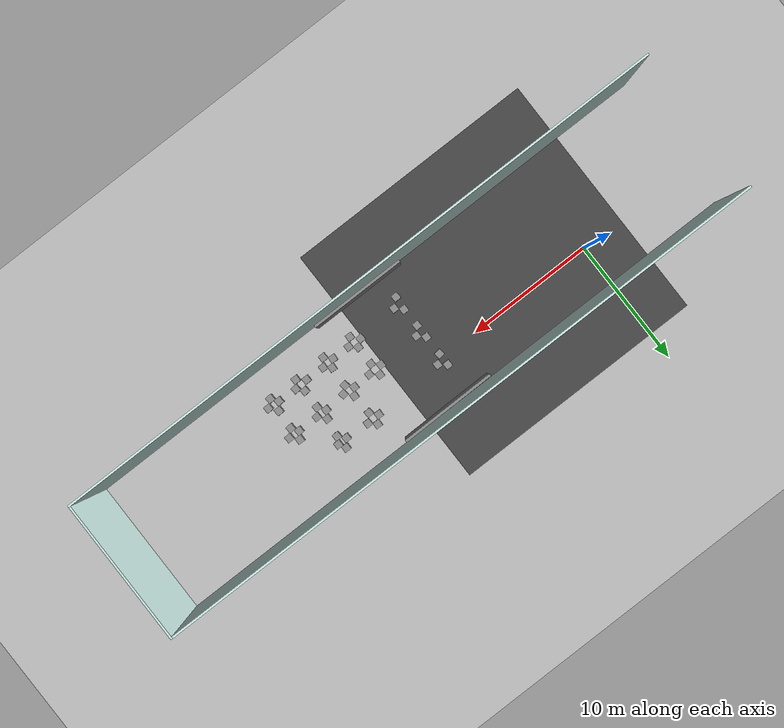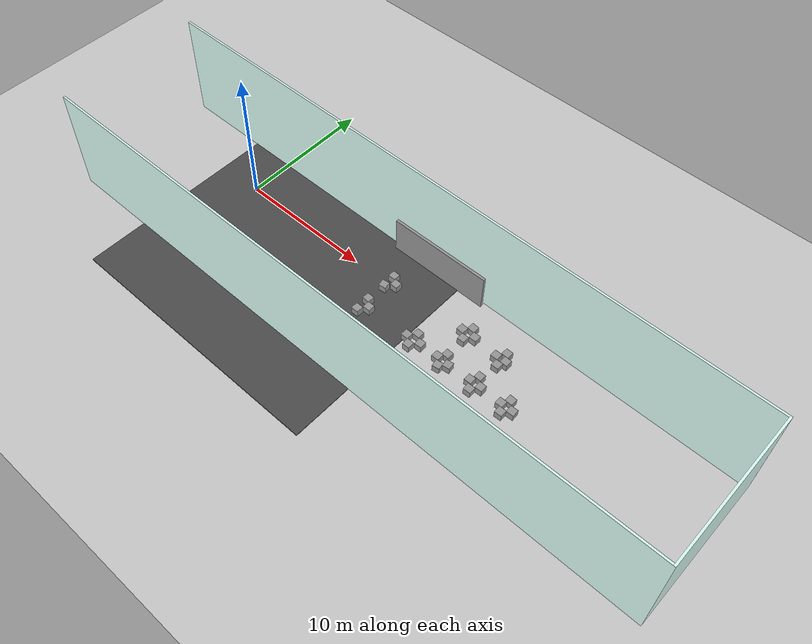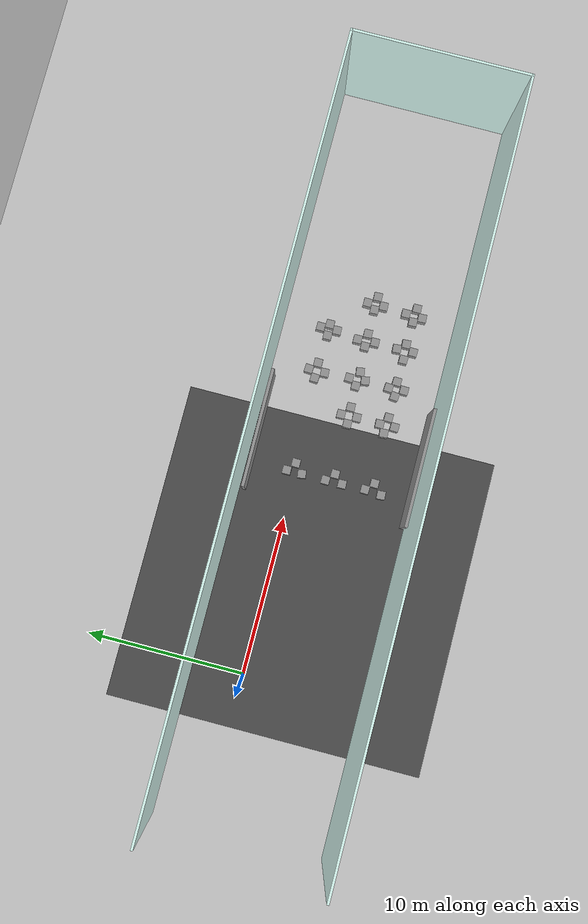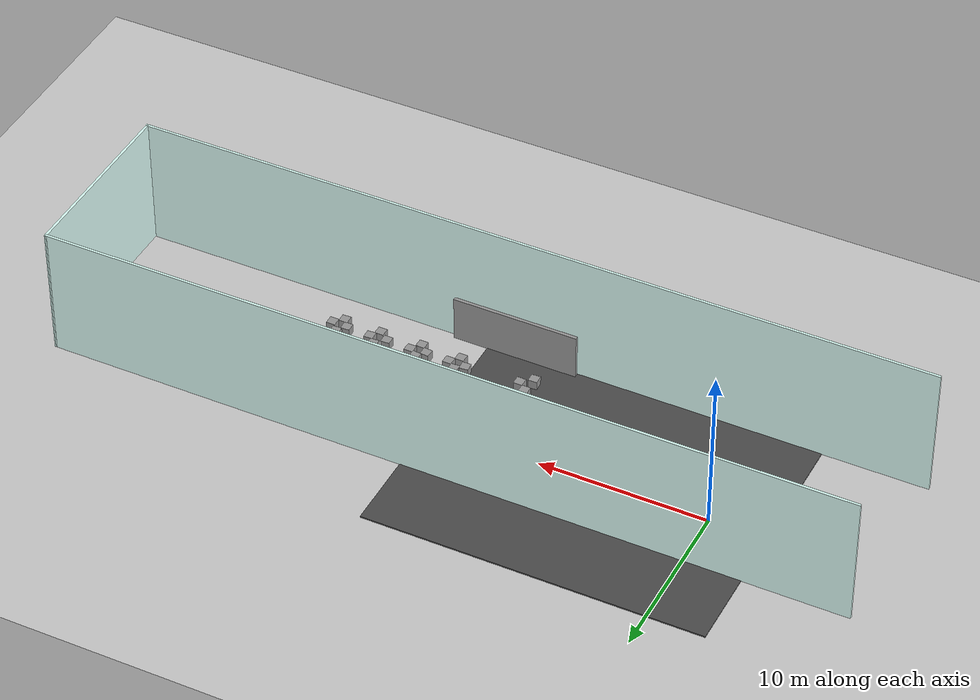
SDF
<sdf version="1.6">
 <world name="default">
  <model name="ground_plane">
   <static>1</static>
   <link name="link">
    <collision name="collision">
     <geometry><plane><normal>0 0 1</normal><size>100 100</size></plane></geometry>
     <surface>
      <contact><collide_bitmask>65535</collide_bitmask></contact>
      <friction><ode><mu>100</mu><mu2>50</mu2></ode></friction>
     </surface>
    </collision>
    <visual name="visual">
     <cast_shadows>0</cast_shadows>
     <geometry><plane><normal>0 0 1</normal><size>100 100</size></plane></geometry>
     <material>
      <script><uri>file://media/materials/scripts/gazebo.material</uri><name>Gazebo/Grey</name></script>
     </material>
    </visual>
   </link>
  </model>
  <model name="grey_wall">
   <static>1</static>
   <link name="link">
    <pose>0 0 1.4 0 -0 0</pose>
    <collision name="collision"><geometry><box><size>7.5 0.2 2.8</size></box></geometry></collision>
    <visual name="visual">
     <cast_shadows>0</cast_shadows>
     <geometry><box><size>7.5 0.2 2.8</size></box></geometry>
     <material>
      <script>
       <uri>model://grey_wall/materials/scripts</uri>
       <uri>model://grey_wall/materials/textures</uri>
       <name>vrc/grey_wall</name>
      </script>
     </material>
    </visual>
   </link>
   <pose>14.888 2.91481 0 0 -0 0.005635</pose>
  </model>
  <model name="grey_wall_clone">
   <static>1</static>
   <link name="link">
    <pose>0 0 1.4 0 -0 0</pose>
    <collision name="collision"><geometry><box><size>7.5 0.2 2.8</size></box></geometry></collision>
    <visual name="visual">
     <cast_shadows>0</cast_shadows>
     <geometry><box><size>7.5 0.2 2.8</size></box></geometry>
     <material>
      <script>
       <uri>model://grey_wall/materials/scripts</uri>
       <uri>model://grey_wall/materials/textures</uri>
       <name>vrc/grey_wall</name>
      </script>
     </material>
    </visual>
   </link>
   <pose>14.9849 -7.30049 0 0 -0 0</pose>
  </model>
  <model name="unit_box_0_clone_10">
   <pose>17.839 -4.8153 0.31411 -1e-06 9e-06 -0.045278</pose>
   <link name="link">
    <inertial>
     <mass>1</mass>
     <inertia>
      <ixx>0.166667</ixx>
      <ixy>0</ixy>
      <ixz>0</ixz>
      <iyy>0.166667</iyy>
      <iyz>0</iyz>
      <izz>0.166667</izz>
     </inertia>
    </inertial>
    <collision name="collision">
     <geometry><box><size>0.530101 0.530101 0.530101</size></box></geometry>
    </collision>
    <visual name="visual">
     <geometry><box><size>0.530101 0.530101 0.530101</size></box></geometry>
     <material>
      <script><name>Gazebo/Grey</name><uri>file://media/materials/scripts/gazebo.material</uri></script>
     </material>
    </visual>
   </link>
  </model>
  <model name="unit_box_0_clone_11">
   <pose>16.7922 -4.75542 0.314111 -5e-06 1.1e-05 0.068782</pose>
   <link name="link">
    <inertial>
     <mass>1</mass>
     <inertia>
      <ixx>0.166667</ixx>
      <ixy>0</ixy>
      <ixz>0</ixz>
      <iyy>0.166667</iyy>
      <iyz>0</iyz>
      <izz>0.166667</izz>
     </inertia>
    </inertial>
    <collision name="collision">
     <geometry><box><size>0.530101 0.530101 0.530101</size></box></geometry>
    </collision>
    <visual name="visual">
     <geometry><box><size>0.530101 0.530101 0.530101</size></box></geometry>
     <material>
      <script><name>Gazebo/Grey</name><uri>file://media/materials/scripts/gazebo.material</uri></script>
     </material>
    </visual>
   </link>
  </model>
  <model name="unit_box_0_clone_12">
   <pose>17.3054 -4.36211 0.314113 2e-06 -0 0.040981</pose>
   <link name="link">
    <inertial>
     <mass>1</mass>
     <inertia>
      <ixx>0.166667</ixx>
      <ixy>0</ixy>
      <ixz>0</ixz>
      <iyy>0.166667</iyy>
      <iyz>0</iyz>
      <izz>0.166667</izz>
     </inertia>
    </inertial>
    <collision name="collision">
     <geometry><box><size>0.530101 0.530101 0.530101</size></box></geometry>
    </collision>
    <visual name="visual">
     <geometry><box><size>0.530101 0.530101 0.530101</size></box></geometry>
     <material>
      <script><name>Gazebo/Grey</name><uri>file://media/materials/scripts/gazebo.material</uri></script>
     </material>
    </visual>
   </link>
  </model>
  <model name="unit_box_0_clone_13">
   <pose>17.3287 -5.32938 0.314108 -7e-06 1.1e-05 -0.026628</pose>
   <link name="link">
    <inertial>
     <mass>1</mass>
     <inertia>
      <ixx>0.166667</ixx>
      <ixy>0</ixy>
      <ixz>0</ixz>
      <iyy>0.166667</iyy>
      <iyz>0</iyz>
      <izz>0.166667</izz>
     </inertia>
    </inertial>
    <collision name="collision">
     <geometry><box><size>0.530101 0.530101 0.530101</size></box></geometry>
    </collision>
    <visual name="visual">
     <geometry><box><size>0.530101 0.530101 0.530101</size></box></geometry>
     <material>
      <script><name>Gazebo/Grey</name><uri>file://media/materials/scripts/gazebo.material</uri></script>
     </material>
    </visual>
   </link>
  </model>
  <model name="unit_box_0_clone_18">
   <pose>19.1218 0.36381 0.31411 -1e-06 9e-06 -0.050958</pose>
   <link name="link">
    <inertial>
     <mass>1</mass>
     <inertia>
      <ixx>0.166667</ixx>
      <ixy>0</ixy>
      <ixz>0</ixz>
      <iyy>0.166667</iyy>
      <iyz>0</iyz>
      <izz>0.166667</izz>
     </inertia>
    </inertial>
    <collision name="collision">
     <geometry><box><size>0.530101 0.530101 0.530101</size></box></geometry>
    </collision>
    <visual name="visual">
     <geometry><box><size>0.530101 0.530101 0.530101</size></box></geometry>
     <material>
      <script><name>Gazebo/Grey</name><uri>file://media/materials/scripts/gazebo.material</uri></script>
     </material>
    </visual>
   </link>
  </model>
  <model name="unit_box_0_clone_19">
   <pose>19.61 0.86882 0.314113 0 0 -0.055591</pose>
   <link name="link">
    <inertial>
     <mass>1</mass>
     <inertia>
      <ixx>0.166667</ixx>
      <ixy>0</ixy>
      <ixz>0</ixz>
      <iyy>0.166667</iyy>
      <iyz>0</iyz>
      <izz>0.166667</izz>
     </inertia>
    </inertial>
    <collision name="collision">
     <geometry><box><size>0.530101 0.530101 0.530101</size></box></geometry>
    </collision>
    <visual name="visual">
     <geometry><box><size>0.530101 0.530101 0.530101</size></box></geometry>
     <material>
      <script><name>Gazebo/Grey</name><uri>file://media/materials/scripts/gazebo.material</uri></script>
     </material>
    </visual>
   </link>
  </model>
  <model name="unit_box_0_clone_20">
   <pose>20.1335 0.394582 0.314113 2e-06 -0 -0.00175</pose>
   <link name="link">
    <inertial>
     <mass>1</mass>
     <inertia>
      <ixx>0.166667</ixx>
      <ixy>0</ixy>
      <ixz>0</ixz>
      <iyy>0.166667</iyy>
      <iyz>0</iyz>
      <izz>0.166667</izz>
     </inertia>
    </inertial>
    <collision name="collision">
     <geometry><box><size>0.530101 0.530101 0.530101</size></box></geometry>
    </collision>
    <visual name="visual">
     <geometry><box><size>0.530101 0.530101 0.530101</size></box></geometry>
     <material>
      <script><name>Gazebo/Grey</name><uri>file://media/materials/scripts/gazebo.material</uri></script>
     </material>
    </visual>
   </link>
  </model>
  <model name="unit_box_0_clone_22">
   <pose>19.6936 -1.76087 0.31411 -1e-06 9e-06 -0.043758</pose>
   <link name="link">
    <inertial>
     <mass>1</mass>
     <inertia>
      <ixx>0.166667</ixx>
      <ixy>0</ixy>
      <ixz>0</ixz>
      <iyy>0.166667</iyy>
      <iyz>0</iyz>
      <izz>0.166667</izz>
     </inertia>
    </inertial>
    <collision name="collision">
     <geometry><box><size>0.530101 0.530101 0.530101</size></box></geometry>
    </collision>
    <visual name="visual">
     <geometry><box><size>0.530101 0.530101 0.530101</size></box></geometry>
     <material>
      <script><name>Gazebo/Grey</name><uri>file://media/materials/scripts/gazebo.material</uri></script>
     </material>
    </visual>
   </link>
  </model>
  <model name="unit_box_0_clone_24">
   <pose>20.2313 -2.35129 0.314108 -1.1e-05 -7e-06 0.142029</pose>
   <link name="link">
    <inertial>
     <mass>1</mass>
     <inertia>
      <ixx>0.166667</ixx>
      <ixy>0</ixy>
      <ixz>0</ixz>
      <iyy>0.166667</iyy>
      <iyz>0</iyz>
      <izz>0.166667</izz>
     </inertia>
    </inertial>
    <collision name="collision">
     <geometry><box><size>0.530101 0.530101 0.530101</size></box></geometry>
    </collision>
    <visual name="visual">
     <geometry><box><size>0.530101 0.530101 0.530101</size></box></geometry>
     <material>
      <script><name>Gazebo/Grey</name><uri>file://media/materials/scripts/gazebo.material</uri></script>
     </material>
    </visual>
   </link>
  </model>
  <model name="unit_box_0_clone_26">
   <pose>19.6965 -4.34867 0.314112 3e-06 3e-06 -0.080151</pose>
   <link name="link">
    <inertial>
     <mass>1</mass>
     <inertia>
      <ixx>0.166667</ixx>
      <ixy>0</ixy>
      <ixz>0</ixz>
      <iyy>0.166667</iyy>
      <iyz>0</iyz>
      <izz>0.166667</izz>
     </inertia>
    </inertial>
    <collision name="collision">
     <geometry><box><size>0.530101 0.530101 0.530101</size></box></geometry>
    </collision>
    <visual name="visual">
     <geometry><box><size>0.530101 0.530101 0.530101</size></box></geometry>
     <material>
      <script><name>Gazebo/Grey</name><uri>file://media/materials/scripts/gazebo.material</uri></script>
     </material>
    </visual>
   </link>
  </model>
  <model name="unit_box_0_clone_27">
   <pose>19.2516 -4.84567 0.314112 3e-06 3e-06 -0.086105</pose>
   <link name="link">
    <inertial>
     <mass>1</mass>
     <inertia>
      <ixx>0.166667</ixx>
      <ixy>0</ixy>
      <ixz>0</ixz>
      <iyy>0.166667</iyy>
      <iyz>0</iyz>
      <izz>0.166667</izz>
     </inertia>
    </inertial>
    <collision name="collision">
     <geometry><box><size>0.530101 0.530101 0.530101</size></box></geometry>
    </collision>
    <visual name="visual">
     <geometry><box><size>0.530101 0.530101 0.530101</size></box></geometry>
     <material>
      <script><name>Gazebo/Grey</name><uri>file://media/materials/scripts/gazebo.material</uri></script>
     </material>
    </visual>
   </link>
  </model>
  <model name="unit_box_0_clone_28">
   <pose>20.2089 -4.77114 0.314113 0 0 -0.035502</pose>
   <link name="link">
    <inertial>
     <mass>1</mass>
     <inertia>
      <ixx>0.166667</ixx>
      <ixy>0</ixy>
      <ixz>0</ixz>
      <iyy>0.166667</iyy>
      <iyz>0</iyz>
      <izz>0.166667</izz>
     </inertia>
    </inertial>
    <collision name="collision">
     <geometry><box><size>0.530101 0.530101 0.530101</size></box></geometry>
    </collision>
    <visual name="visual">
     <geometry><box><size>0.530101 0.530101 0.530101</size></box></geometry>
     <material>
      <script><name>Gazebo/Grey</name><uri>file://media/materials/scripts/gazebo.material</uri></script>
     </material>
    </visual>
   </link>
  </model>
  <model name="unit_box_0_clone_29">
   <pose>19.7625 -5.34364 0.314113 2e-06 -0 -0.008113</pose>
   <link name="link">
    <inertial>
     <mass>1</mass>
     <inertia>
      <ixx>0.166667</ixx>
      <ixy>0</ixy>
      <ixz>0</ixz>
      <iyy>0.166667</iyy>
      <iyz>0</iyz>
      <izz>0.166667</izz>
     </inertia>
    </inertial>
    <collision name="collision">
     <geometry><box><size>0.530101 0.530101 0.530101</size></box></geometry>
    </collision>
    <visual name="visual">
     <geometry><box><size>0.530101 0.530101 0.530101</size></box></geometry>
     <material>
      <script><name>Gazebo/Grey</name><uri>file://media/materials/scripts/gazebo.material</uri></script>
     </material>
    </visual>
   </link>
  </model>
  <model name="unit_box_0_clone_30">
   <pose>21.6915 -4.81691 0.314113 2e-06 -0 0</pose>
   <link name="link">
    <inertial>
     <mass>1</mass>
     <inertia>
      <ixx>0.166667</ixx>
      <ixy>0</ixy>
      <ixz>0</ixz>
      <iyy>0.166667</iyy>
      <iyz>0</iyz>
      <izz>0.166667</izz>
     </inertia>
    </inertial>
    <collision name="collision">
     <geometry><box><size>0.530101 0.530101 0.530101</size></box></geometry>
    </collision>
    <visual name="visual">
     <geometry><box><size>0.530101 0.530101 0.530101</size></box></geometry>
     <material>
      <script><name>Gazebo/Grey</name><uri>file://media/materials/scripts/gazebo.material</uri></script>
     </material>
    </visual>
   </link>
  </model>
  <model name="unit_box_0_clone_33">
   <pose>22.2748 -4.24634 0.314111 -5e-06 1.1e-05 0.060899</pose>
   <link name="link">
    <inertial>
     <mass>1</mass>
     <inertia>
      <ixx>0.166667</ixx>
      <ixy>0</ixy>
      <ixz>0</ixz>
      <iyy>0.166667</iyy>
      <iyz>0</iyz>
      <izz>0.166667</izz>
     </inertia>
    </inertial>
    <collision name="collision">
     <geometry><box><size>0.530101 0.530101 0.530101</size></box></geometry>
    </collision>
    <visual name="visual">
     <geometry><box><size>0.530101 0.530101 0.530101</size></box></geometry>
     <material>
      <script><name>Gazebo/Grey</name><uri>file://media/materials/scripts/gazebo.material</uri></script>
     </material>
    </visual>
   </link>
  </model>
  <model name="unit_box_0_clone_34">
   <pose>22.2394 -1.66118 0.314113 2e-06 -0 1e-06</pose>
   <link name="link">
    <inertial>
     <mass>1</mass>
     <inertia>
      <ixx>0.166667</ixx>
      <ixy>0</ixy>
      <ixz>0</ixz>
      <iyy>0.166667</iyy>
      <iyz>0</iyz>
      <izz>0.166667</izz>
     </inertia>
    </inertial>
    <collision name="collision">
     <geometry><box><size>0.530101 0.530101 0.530101</size></box></geometry>
    </collision>
    <visual name="visual">
     <geometry><box><size>0.530101 0.530101 0.530101</size></box></geometry>
     <material>
      <script><name>Gazebo/Grey</name><uri>file://media/materials/scripts/gazebo.material</uri></script>
     </material>
    </visual>
   </link>
  </model>
  <model name="unit_box_0_clone_36">
   <pose>22.7152 -4.75531 0.314113 0 -0 0.049263</pose>
   <link name="link">
    <inertial>
     <mass>1</mass>
     <inertia>
      <ixx>0.166667</ixx>
      <ixy>0</ixy>
      <ixz>0</ixz>
      <iyy>0.166667</iyy>
      <iyz>0</iyz>
      <izz>0.166667</izz>
     </inertia>
    </inertial>
    <collision name="collision">
     <geometry><box><size>0.530101 0.530101 0.530101</size></box></geometry>
    </collision>
    <visual name="visual">
     <geometry><box><size>0.530101 0.530101 0.530101</size></box></geometry>
     <material>
      <script><name>Gazebo/Grey</name><uri>file://media/materials/scripts/gazebo.material</uri></script>
     </material>
    </visual>
   </link>
  </model>
  <model name="unit_box_0_clone_37">
   <pose>22.3075 -5.29948 0.314113 2e-06 0 -0.002179</pose>
   <link name="link">
    <inertial>
     <mass>1</mass>
     <inertia>
      <ixx>0.166667</ixx>
      <ixy>0</ixy>
      <ixz>0</ixz>
      <iyy>0.166667</iyy>
      <iyz>0</iyz>
      <izz>0.166667</izz>
     </inertia>
    </inertial>
    <collision name="collision">
     <geometry><box><size>0.530101 0.530101 0.530101</size></box></geometry>
    </collision>
    <visual name="visual">
     <geometry><box><size>0.530101 0.530101 0.530101</size></box></geometry>
     <material>
      <script><name>Gazebo/Grey</name><uri>file://media/materials/scripts/gazebo.material</uri></script>
     </material>
    </visual>
   </link>
  </model>
  <model name="unit_box_0_clone_40">
   <pose>24.5965 -5.33599 0.314113 0 -0 0.031914</pose>
   <link name="link">
    <inertial>
     <mass>1</mass>
     <inertia>
      <ixx>0.166667</ixx>
      <ixy>0</ixy>
      <ixz>0</ixz>
      <iyy>0.166667</iyy>
      <iyz>0</iyz>
      <izz>0.166667</izz>
     </inertia>
    </inertial>
    <collision name="collision">
     <geometry><box><size>0.530101 0.530101 0.530101</size></box></geometry>
    </collision>
    <visual name="visual">
     <geometry><box><size>0.530101 0.530101 0.530101</size></box></geometry>
     <material>
      <script><name>Gazebo/Grey</name><uri>file://media/materials/scripts/gazebo.material</uri></script>
     </material>
    </visual>
   </link>
  </model>
  <model name="unit_box_0_clone_45">
   <pose>24.7181 -1.70398 0.314113 0 0 -0.022696</pose>
   <link name="link">
    <inertial>
     <mass>1</mass>
     <inertia>
      <ixx>0.166667</ixx>
      <ixy>0</ixy>
      <ixz>0</ixz>
      <iyy>0.166667</iyy>
      <iyz>0</iyz>
      <izz>0.166667</izz>
     </inertia>
    </inertial>
    <collision name="collision">
     <geometry><box><size>0.530101 0.530101 0.530101</size></box></geometry>
    </collision>
    <visual name="visual">
     <geometry><box><size>0.530101 0.530101 0.530101</size></box></geometry>
     <material>
      <script><name>Gazebo/Grey</name><uri>file://media/materials/scripts/gazebo.material</uri></script>
     </material>
    </visual>
   </link>
  </model>
  <model name="unit_box_0_clone_47">
   <pose>22.7519 0.280742 0.314111 6e-06 -1.1e-05 -0.009472</pose>
   <link name="link">
    <inertial>
     <mass>1</mass>
     <inertia>
      <ixx>0.166667</ixx>
      <ixy>0</ixy>
      <ixz>0</ixz>
      <iyy>0.166667</iyy>
      <iyz>0</iyz>
      <izz>0.166667</izz>
     </inertia>
    </inertial>
    <collision name="collision">
     <geometry><box><size>0.530101 0.530101 0.530101</size></box></geometry>
    </collision>
    <visual name="visual">
     <geometry><box><size>0.530101 0.530101 0.530101</size></box></geometry>
     <material>
      <script><name>Gazebo/Grey</name><uri>file://media/materials/scripts/gazebo.material</uri></script>
     </material>
    </visual>
   </link>
  </model>
  <model name="unit_box_0_clone_48">
   <pose>22.4415 0.817267 0.314113 0 0 -0.022174</pose>
   <link name="link">
    <inertial>
     <mass>1</mass>
     <inertia>
      <ixx>0.166667</ixx>
      <ixy>0</ixy>
      <ixz>0</ixz>
      <iyy>0.166667</iyy>
      <iyz>0</iyz>
      <izz>0.166667</izz>
     </inertia>
    </inertial>
    <collision name="collision">
     <geometry><box><size>0.530101 0.530101 0.530101</size></box></geometry>
    </collision>
    <visual name="visual">
     <geometry><box><size>0.530101 0.530101 0.530101</size></box></geometry>
     <material>
      <script><name>Gazebo/Grey</name><uri>file://media/materials/scripts/gazebo.material</uri></script>
     </material>
    </visual>
   </link>
  </model>
  <model name="unit_box_0_clone_22_clone">
   <pose>19.2929 -2.28114 0.31411 0 -9e-06 -0.018135</pose>
   <link name="link">
    <inertial>
     <mass>1</mass>
     <inertia>
      <ixx>0.166667</ixx>
      <ixy>0</ixy>
      <ixz>0</ixz>
      <iyy>0.166667</iyy>
      <iyz>0</iyz>
      <izz>0.166667</izz>
     </inertia>
    </inertial>
    <collision name="collision">
     <geometry><box><size>0.530101 0.530101 0.530101</size></box></geometry>
    </collision>
    <visual name="visual">
     <geometry><box><size>0.530101 0.530101 0.530101</size></box></geometry>
     <material>
      <script><name>Gazebo/Grey</name><uri>file://media/materials/scripts/gazebo.material</uri></script>
     </material>
    </visual>
   </link>
  </model>
  <model name="unit_box_0_clone_22_clone_0">
   <pose>19.7566 -2.79249 0.314111 7e-06 -2e-06 0.142024</pose>
   <link name="link">
    <inertial>
     <mass>1</mass>
     <inertia>
      <ixx>0.166667</ixx>
      <ixy>0</ixy>
      <ixz>0</ixz>
      <iyy>0.166667</iyy>
      <iyz>0</iyz>
      <izz>0.166667</izz>
     </inertia>
    </inertial>
    <collision name="collision">
     <geometry><box><size>0.530101 0.530101 0.530101</size></box></geometry>
    </collision>
    <visual name="visual">
     <geometry><box><size>0.530101 0.530101 0.530101</size></box></geometry>
     <material>
      <script><name>Gazebo/Grey</name><uri>file://media/materials/scripts/gazebo.material</uri></script>
     </material>
    </visual>
   </link>
  </model>
  <model name="unit_box_0_clone_22_clone_1">
   <pose>21.9071 -2.22875 0.314112 0 -0 0.018993</pose>
   <link name="link">
    <inertial>
     <mass>1</mass>
     <inertia>
      <ixx>0.166667</ixx>
      <ixy>0</ixy>
      <ixz>0</ixz>
      <iyy>0.166667</iyy>
      <iyz>0</iyz>
      <izz>0.166667</izz>
     </inertia>
    </inertial>
    <collision name="collision">
     <geometry><box><size>0.530101 0.530101 0.530101</size></box></geometry>
    </collision>
    <visual name="visual">
     <geometry><box><size>0.530101 0.530101 0.530101</size></box></geometry>
     <material>
      <script><name>Gazebo/Grey</name><uri>file://media/materials/scripts/gazebo.material</uri></script>
     </material>
    </visual>
   </link>
  </model>
  <model name="unit_box_0_clone_22_clone_2">
   <pose>22.314 -2.79447 0.314111 -1.1e-05 -5e-06 0.018983</pose>
   <link name="link">
    <inertial>
     <mass>1</mass>
     <inertia>
      <ixx>0.166667</ixx>
      <ixy>0</ixy>
      <ixz>0</ixz>
      <iyy>0.166667</iyy>
      <iyz>0</iyz>
      <izz>0.166667</izz>
     </inertia>
    </inertial>
    <collision name="collision">
     <geometry><box><size>0.530101 0.530101 0.530101</size></box></geometry>
    </collision>
    <visual name="visual">
     <geometry><box><size>0.530101 0.530101 0.530101</size></box></geometry>
     <material>
      <script><name>Gazebo/Grey</name><uri>file://media/materials/scripts/gazebo.material</uri></script>
     </material>
    </visual>
   </link>
  </model>
  <model name="unit_box_0_clone_22_clone_3">
   <pose>22.7608 -2.22634 0.314111 -1.1e-05 -5e-06 0.018983</pose>
   <link name="link">
    <inertial>
     <mass>1</mass>
     <inertia>
      <ixx>0.166667</ixx>
      <ixy>0</ixy>
      <ixz>0</ixz>
      <iyy>0.166667</iyy>
      <iyz>0</iyz>
      <izz>0.166667</izz>
     </inertia>
    </inertial>
    <collision name="collision">
     <geometry><box><size>0.530101 0.530101 0.530101</size></box></geometry>
    </collision>
    <visual name="visual">
     <geometry><box><size>0.530101 0.530101 0.530101</size></box></geometry>
     <material>
      <script><name>Gazebo/Grey</name><uri>file://media/materials/scripts/gazebo.material</uri></script>
     </material>
    </visual>
   </link>
  </model>
  <model name="unit_box_0_clone_22_clone_4">
   <pose>24.3724 -2.23829 0.314113 0 -0 0.019139</pose>
   <link name="link">
    <inertial>
     <mass>1</mass>
     <inertia>
      <ixx>0.166667</ixx>
      <ixy>0</ixy>
      <ixz>0</ixz>
      <iyy>0.166667</iyy>
      <iyz>0</iyz>
      <izz>0.166667</izz>
     </inertia>
    </inertial>
    <collision name="collision">
     <geometry><box><size>0.530101 0.530101 0.530101</size></box></geometry>
    </collision>
    <visual name="visual">
     <geometry><box><size>0.530101 0.530101 0.530101</size></box></geometry>
     <material>
      <script><name>Gazebo/Grey</name><uri>file://media/materials/scripts/gazebo.material</uri></script>
     </material>
    </visual>
   </link>
  </model>
  <model name="unit_box_0_clone_22_clone_5">
   <pose>24.7363 -2.76041 0.314108 1e-05 -7e-06 0.031964</pose>
   <link name="link">
    <inertial>
     <mass>1</mass>
     <inertia>
      <ixx>0.166667</ixx>
      <ixy>0</ixy>
      <ixz>0</ixz>
      <iyy>0.166667</iyy>
      <iyz>0</iyz>
      <izz>0.166667</izz>
     </inertia>
    </inertial>
    <collision name="collision">
     <geometry><box><size>0.530101 0.530101 0.530101</size></box></geometry>
    </collision>
    <visual name="visual">
     <geometry><box><size>0.530101 0.530101 0.530101</size></box></geometry>
     <material>
      <script><name>Gazebo/Grey</name><uri>file://media/materials/scripts/gazebo.material</uri></script>
     </material>
    </visual>
   </link>
  </model>
  <model name="unit_box_0_clone_22_clone_6">
   <pose>17.3327 -2.86016 0.314112 0 -0 0.017748</pose>
   <link name="link">
    <inertial>
     <mass>1</mass>
     <inertia>
      <ixx>0.166667</ixx>
      <ixy>0</ixy>
      <ixz>0</ixz>
      <iyy>0.166667</iyy>
      <iyz>0</iyz>
      <izz>0.166667</izz>
     </inertia>
    </inertial>
    <collision name="collision">
     <geometry><box><size>0.530101 0.530101 0.530101</size></box></geometry>
    </collision>
    <visual name="visual">
     <geometry><box><size>0.530101 0.530101 0.530101</size></box></geometry>
     <material>
      <script><name>Gazebo/Grey</name><uri>file://media/materials/scripts/gazebo.material</uri></script>
     </material>
    </visual>
   </link>
  </model>
  <model name="unit_box_0_clone_22_clone_7">
   <pose>16.7976 -2.37052 0.314113 0 -0 0.001219</pose>
   <link name="link">
    <inertial>
     <mass>1</mass>
     <inertia>
      <ixx>0.166667</ixx>
      <ixy>0</ixy>
      <ixz>0</ixz>
      <iyy>0.166667</iyy>
      <iyz>0</iyz>
      <izz>0.166667</izz>
     </inertia>
    </inertial>
    <collision name="collision">
     <geometry><box><size>0.530101 0.530101 0.530101</size></box></geometry>
    </collision>
    <visual name="visual">
     <geometry><box><size>0.530101 0.530101 0.530101</size></box></geometry>
     <material>
      <script><name>Gazebo/Grey</name><uri>file://media/materials/scripts/gazebo.material</uri></script>
     </material>
    </visual>
   </link>
  </model>
  <model name="unit_box_0_clone_22_clone_8">
   <pose>17.2949 -1.84031 0.314113 2e-06 0 -0.001706</pose>
   <link name="link">
    <inertial>
     <mass>1</mass>
     <inertia>
      <ixx>0.166667</ixx>
      <ixy>0</ixy>
      <ixz>0</ixz>
      <iyy>0.166667</iyy>
      <iyz>0</iyz>
      <izz>0.166667</izz>
     </inertia>
    </inertial>
    <collision name="collision">
     <geometry><box><size>0.530101 0.530101 0.530101</size></box></geometry>
    </collision>
    <visual name="visual">
     <geometry><box><size>0.530101 0.530101 0.530101</size></box></geometry>
     <material>
      <script><name>Gazebo/Grey</name><uri>file://media/materials/scripts/gazebo.material</uri></script>
     </material>
    </visual>
   </link>
  </model>
  <model name="unit_box_0_clone_22_clone_9">
   <pose>17.8893 -2.32768 0.314112 0 -0 0.018991</pose>
   <link name="link">
    <inertial>
     <mass>1</mass>
     <inertia>
      <ixx>0.166667</ixx>
      <ixy>0</ixy>
      <ixz>0</ixz>
      <iyy>0.166667</iyy>
      <iyz>0</iyz>
      <izz>0.166667</izz>
     </inertia>
    </inertial>
    <collision name="collision">
     <geometry><box><size>0.530101 0.530101 0.530101</size></box></geometry>
    </collision>
    <visual name="visual">
     <geometry><box><size>0.530101 0.530101 0.530101</size></box></geometry>
     <material>
      <script><name>Gazebo/Grey</name><uri>file://media/materials/scripts/gazebo.material</uri></script>
     </material>
    </visual>
   </link>
  </model>
  <model name="unit_box_0_clone_22_clone_10">
   <pose>19.6115 -0.169351 0.314113 0 -0 0.043619</pose>
   <link name="link">
    <inertial>
     <mass>1</mass>
     <inertia>
      <ixx>0.166667</ixx>
      <ixy>0</ixy>
      <ixz>0</ixz>
      <iyy>0.166667</iyy>
      <iyz>0</iyz>
      <izz>0.166667</izz>
     </inertia>
    </inertial>
    <collision name="collision">
     <geometry><box><size>0.530101 0.530101 0.530101</size></box></geometry>
    </collision>
    <visual name="visual">
     <geometry><box><size>0.530101 0.530101 0.530101</size></box></geometry>
     <material>
      <script><name>Gazebo/Grey</name><uri>file://media/materials/scripts/gazebo.material</uri></script>
     </material>
    </visual>
   </link>
  </model>
  <model name="unit_box_0_clone_22_clone_11">
   <pose>22.4624 -0.258273 0.314113 0 2e-06 0.03542</pose>
   <link name="link">
    <inertial>
     <mass>1</mass>
     <inertia>
      <ixx>0.166667</ixx>
      <ixy>0</ixy>
      <ixz>0</ixz>
      <iyy>0.166667</iyy>
      <iyz>0</iyz>
      <izz>0.166667</izz>
     </inertia>
    </inertial>
    <collision name="collision">
     <geometry><box><size>0.530101 0.530101 0.530101</size></box></geometry>
    </collision>
    <visual name="visual">
     <geometry><box><size>0.530101 0.530101 0.530101</size></box></geometry>
     <material>
      <script><name>Gazebo/Grey</name><uri>file://media/materials/scripts/gazebo.material</uri></script>
     </material>
    </visual>
   </link>
  </model>
  <model name="unit_box_0_clone_22_clone_12">
   <pose>21.9954 0.261938 0.314113 0 -0 0.024028</pose>
   <link name="link">
    <inertial>
     <mass>1</mass>
     <inertia>
      <ixx>0.166667</ixx>
      <ixy>0</ixy>
      <ixz>0</ixz>
      <iyy>0.166667</iyy>
      <iyz>0</iyz>
      <izz>0.166667</izz>
     </inertia>
    </inertial>
    <collision name="collision">
     <geometry><box><size>0.530101 0.530101 0.530101</size></box></geometry>
    </collision>
    <visual name="visual">
     <geometry><box><size>0.530101 0.530101 0.530101</size></box></geometry>
     <material>
      <script><name>Gazebo/Grey</name><uri>file://media/materials/scripts/gazebo.material</uri></script>
     </material>
    </visual>
   </link>
  </model>
  <model name="unit_box_0_clone_22_clone_13">
   <pose>25.2504 -2.25518 0.314113 0 -0 0.032982</pose>
   <link name="link">
    <inertial>
     <mass>1</mass>
     <inertia>
      <ixx>0.166667</ixx>
      <ixy>0</ixy>
      <ixz>0</ixz>
      <iyy>0.166667</iyy>
      <iyz>0</iyz>
      <izz>0.166667</izz>
     </inertia>
    </inertial>
    <collision name="collision">
     <geometry><box><size>0.530101 0.530101 0.530101</size></box></geometry>
    </collision>
    <visual name="visual">
     <geometry><box><size>0.530101 0.530101 0.530101</size></box></geometry>
     <material>
      <script><name>Gazebo/Grey</name><uri>file://media/materials/scripts/gazebo.material</uri></script>
     </material>
    </visual>
   </link>
  </model>
  <model name="unit_box_0_clone_22_clone_15">
   <pose>12.9875 0.590102 0.30187 -0.030554 1.1e-05 0.000356</pose>
   <link name="link">
    <inertial>
     <mass>1</mass>
     <inertia>
      <ixx>0.166667</ixx>
      <ixy>0</ixy>
      <ixz>0</ixz>
      <iyy>0.166667</iyy>
      <iyz>0</iyz>
      <izz>0.166667</izz>
     </inertia>
    </inertial>
    <collision name="collision">
     <geometry><box><size>0.530101 0.530101 0.530101</size></box></geometry>
    </collision>
    <visual name="visual">
     <geometry><box><size>0.530101 0.530101 0.530101</size></box></geometry>
     <material>
      <script><name>Gazebo/Grey</name><uri>file://media/materials/scripts/gazebo.material</uri></script>
     </material>
    </visual>
   </link>
  </model>
  <model name="unit_box_0_clone_22_clone_16">
   <pose>13.5624 0.13961 0.314112 0 0 -0.004952</pose>
   <link name="link">
    <inertial>
     <mass>1</mass>
     <inertia>
      <ixx>0.166667</ixx>
      <ixy>0</ixy>
      <ixz>0</ixz>
      <iyy>0.166667</iyy>
      <iyz>0</iyz>
      <izz>0.166667</izz>
     </inertia>
    </inertial>
    <collision name="collision">
     <geometry><box><size>0.530101 0.530101 0.530101</size></box></geometry>
    </collision>
    <visual name="visual">
     <geometry><box><size>0.530101 0.530101 0.530101</size></box></geometry>
     <material>
      <script><name>Gazebo/Grey</name><uri>file://media/materials/scripts/gazebo.material</uri></script>
     </material>
    </visual>
   </link>
  </model>
  <model name="unit_box_0_clone_22_clone_17">
   <pose>12.9792 -0.386651 0.293895 0 -7e-06 0.138271</pose>
   <link name="link">
    <inertial>
     <mass>1</mass>
     <inertia>
      <ixx>0.166667</ixx>
      <ixy>0</ixy>
      <ixz>0</ixz>
      <iyy>0.166667</iyy>
      <iyz>0</iyz>
      <izz>0.166667</izz>
     </inertia>
    </inertial>
    <collision name="collision">
     <geometry><box><size>0.530101 0.530101 0.530101</size></box></geometry>
    </collision>
    <visual name="visual">
     <geometry><box><size>0.530101 0.530101 0.530101</size></box></geometry>
     <material>
      <script><name>Gazebo/Grey</name><uri>file://media/materials/scripts/gazebo.material</uri></script>
     </material>
    </visual>
   </link>
  </model>
  <model name="unit_box_0_clone_22_clone_18">
   <pose>12.9862 -1.92955 0.301264 -0.027264 -0.000921 -0.033706</pose>
   <link name="link">
    <inertial>
     <mass>1</mass>
     <inertia>
      <ixx>0.166667</ixx>
      <ixy>0</ixy>
      <ixz>0</ixz>
      <iyy>0.166667</iyy>
      <iyz>0</iyz>
      <izz>0.166667</izz>
     </inertia>
    </inertial>
    <collision name="collision">
     <geometry><box><size>0.530101 0.530101 0.530101</size></box></geometry>
    </collision>
    <visual name="visual">
     <geometry><box><size>0.530101 0.530101 0.530101</size></box></geometry>
     <material>
      <script><name>Gazebo/Grey</name><uri>file://media/materials/scripts/gazebo.material</uri></script>
     </material>
    </visual>
   </link>
  </model>
  <model name="unit_box_0_clone_22_clone_20">
   <pose>13 -3.00003 0.293893 0 -0 0.019006</pose>
   <link name="link">
    <inertial>
     <mass>1</mass>
     <inertia>
      <ixx>0.166667</ixx>
      <ixy>0</ixy>
      <ixz>0</ixz>
      <iyy>0.166667</iyy>
      <iyz>0</iyz>
      <izz>0.166667</izz>
     </inertia>
    </inertial>
    <collision name="collision">
     <geometry><box><size>0.530101 0.530101 0.530101</size></box></geometry>
    </collision>
    <visual name="visual">
     <geometry><box><size>0.530101 0.530101 0.530101</size></box></geometry>
     <material>
      <script><name>Gazebo/Grey</name><uri>file://media/materials/scripts/gazebo.material</uri></script>
     </material>
    </visual>
   </link>
  </model>
  <model name="unit_box_0_clone_22_clone_21">
   <pose>13.5104 -2.43044 0.31411 -9e-06 -0 -0.009925</pose>
   <link name="link">
    <inertial>
     <mass>1</mass>
     <inertia>
      <ixx>0.166667</ixx>
      <ixy>0</ixy>
      <ixz>0</ixz>
      <iyy>0.166667</iyy>
      <iyz>0</iyz>
      <izz>0.166667</izz>
     </inertia>
    </inertial>
    <collision name="collision">
     <geometry><box><size>0.530101 0.530101 0.530101</size></box></geometry>
    </collision>
    <visual name="visual">
     <geometry><box><size>0.530101 0.530101 0.530101</size></box></geometry>
     <material>
      <script><name>Gazebo/Grey</name><uri>file://media/materials/scripts/gazebo.material</uri></script>
     </material>
    </visual>
   </link>
  </model>
  <model name="unit_box_0_clone_22_clone_22">
   <pose>13.0374 -4.48715 0.301605 -0.028361 -0.00114 -0.040176</pose>
   <link name="link">
    <inertial>
     <mass>1</mass>
     <inertia>
      <ixx>0.166667</ixx>
      <ixy>0</ixy>
      <ixz>0</ixz>
      <iyy>0.166667</iyy>
      <iyz>0</iyz>
      <izz>0.166667</izz>
     </inertia>
    </inertial>
    <collision name="collision">
     <geometry><box><size>0.530101 0.530101 0.530101</size></box></geometry>
    </collision>
    <visual name="visual">
     <geometry><box><size>0.530101 0.530101 0.530101</size></box></geometry>
     <material>
      <script><name>Gazebo/Grey</name><uri>file://media/materials/scripts/gazebo.material</uri></script>
     </material>
    </visual>
   </link>
  </model>
  <model name="unit_box_0_clone_22_clone_23">
   <pose>13.5574 -4.98043 0.314112 0 0 -0.016194</pose>
   <link name="link">
    <inertial>
     <mass>1</mass>
     <inertia>
      <ixx>0.166667</ixx>
      <ixy>0</ixy>
      <ixz>0</ixz>
      <iyy>0.166667</iyy>
      <iyz>0</iyz>
      <izz>0.166667</izz>
     </inertia>
    </inertial>
    <collision name="collision">
     <geometry><box><size>0.530101 0.530101 0.530101</size></box></geometry>
    </collision>
    <visual name="visual">
     <geometry><box><size>0.530101 0.530101 0.530101</size></box></geometry>
     <material>
      <script><name>Gazebo/Grey</name><uri>file://media/materials/scripts/gazebo.material</uri></script>
     </material>
    </visual>
   </link>
  </model>
  <model name="unit_box_0_clone_22_clone_25">
   <pose>12.9422 -5.55085 0.293892 6e-06 -1.1e-05 0.049731</pose>
   <link name="link">
    <inertial>
     <mass>1</mass>
     <inertia>
      <ixx>0.166667</ixx>
      <ixy>0</ixy>
      <ixz>0</ixz>
      <iyy>0.166667</iyy>
      <iyz>0</iyz>
      <izz>0.166667</izz>
     </inertia>
    </inertial>
    <collision name="collision">
     <geometry><box><size>0.530101 0.530101 0.530101</size></box></geometry>
    </collision>
    <visual name="visual">
     <geometry><box><size>0.530101 0.530101 0.530101</size></box></geometry>
     <material>
      <script><name>Gazebo/Grey</name><uri>file://media/materials/scripts/gazebo.material</uri></script>
     </material>
    </visual>
   </link>
  </model>
  <model name="world_frame">
   <link name="Wall_210">
    <pose>-0.024075 -5.42699 0 0 -0 0</pose>
    <visual name="Wall_210_Visual">
     <pose>0 0 4 0 -0 0</pose>
     <geometry><box><size>47.75 0.15 8</size></box></geometry>
     <material>
      <script><uri>file://media/materials/scripts/gazebo.material</uri><name>Gazebo/Grey</name></script>
      <ambient>0.866667 1 0.972549 1</ambient>
      <shader type="pixel"/>
      <diffuse>0.7 0.7 0.7 1</diffuse>
      <specular>0.01 0.01 0.01 1</specular>
      <emissive>0 0 0 1</emissive>
     </material>
     <meta><layer>0</layer></meta>
    </visual>
    <collision name="Wall_210_Collision">
     <pose>0 0 4 0 -0 0</pose>
     <geometry><box><size>47.75 0.15 8</size></box></geometry>
     <surface>
      <friction>
       <ode><mu>1</mu><mu2>1</mu2><fdir1>0 0 0</fdir1><slip1>0</slip1><slip2>0</slip2></ode>
       <torsional>
        <coefficient>1</coefficient>
        <patch_radius>0</patch_radius>
        <surface_radius>0</surface_radius>
        <use_patch_radius>1</use_patch_radius>
        <ode><slip>0</slip></ode>
       </torsional>
      </friction>
      <bounce><restitution_coefficient>0</restitution_coefficient><threshold>1e+06</threshold></bounce>
      <contact>
       <collide_without_contact>0</collide_without_contact>
       <collide_without_contact_bitmask>1</collide_without_contact_bitmask>
       <collide_bitmask>1</collide_bitmask>
       <ode>
        <soft_cfm>0</soft_cfm>
        <soft_erp>0.2</soft_erp>
        <kp>1e+13</kp>
        <kd>1</kd>
        <max_vel>0.01</max_vel>
        <min_depth>0</min_depth>
       </ode>
       <bullet>
        <split_impulse>1</split_impulse>
        <split_impulse_penetration_threshold>-0.01</split_impulse_penetration_threshold>
        <soft_cfm>0</soft_cfm>
        <soft_erp>0.2</soft_erp>
        <kp>1e+13</kp>
        <kd>1</kd>
       </bullet>
      </contact>
     </surface>
    </collision>
   </link>
   <link name="Wall_211">
    <pose>23.7999 0 0 0 -0 1.56702</pose>
    <visual name="Wall_211_Visual">
     <pose>0 0 4 0 -0 0</pose>
     <geometry><box><size>11 0.15 8</size></box></geometry>
     <material>
      <script><uri>file://media/materials/scripts/gazebo.material</uri><name>Gazebo/Grey</name></script>
      <ambient>0.866667 1 0.972549 1</ambient>
      <shader type="pixel"/>
      <diffuse>0.7 0.7 0.7 1</diffuse>
      <specular>0.01 0.01 0.01 1</specular>
      <emissive>0 0 0 1</emissive>
     </material>
     <meta><layer>0</layer></meta>
    </visual>
    <collision name="Wall_211_Collision">
     <pose>0 0 4 0 -0 0</pose>
     <geometry><box><size>11 0.15 8</size></box></geometry>
     <surface>
      <friction>
       <ode><mu>1</mu><mu2>1</mu2><fdir1>0 0 0</fdir1><slip1>0</slip1><slip2>0</slip2></ode>
       <torsional>
        <coefficient>1</coefficient>
        <patch_radius>0</patch_radius>
        <surface_radius>0</surface_radius>
        <use_patch_radius>1</use_patch_radius>
        <ode><slip>0</slip></ode>
       </torsional>
      </friction>
      <bounce><restitution_coefficient>0</restitution_coefficient><threshold>1e+06</threshold></bounce>
      <contact>
       <collide_without_contact>0</collide_without_contact>
       <collide_without_contact_bitmask>1</collide_without_contact_bitmask>
       <collide_bitmask>1</collide_bitmask>
       <ode>
        <soft_cfm>0</soft_cfm>
        <soft_erp>0.2</soft_erp>
        <kp>1e+13</kp>
        <kd>1</kd>
        <max_vel>0.01</max_vel>
        <min_depth>0</min_depth>
       </ode>
       <bullet>
        <split_impulse>1</split_impulse>
        <split_impulse_penetration_threshold>-0.01</split_impulse_penetration_threshold>
        <soft_cfm>0</soft_cfm>
        <soft_erp>0.2</soft_erp>
        <kp>1e+13</kp>
        <kd>1</kd>
       </bullet>
      </contact>
     </surface>
    </collision>
   </link>
   <link name="Wall_212">
    <pose>0.02036 5.425 0 0 -0 3.14159</pose>
    <visual name="Wall_212_Visual">
     <pose>0 0 4 0 -0 0</pose>
     <geometry><box><size>47.75 0.15 8</size></box></geometry>
     <material>
      <script><uri>file://media/materials/scripts/gazebo.material</uri><name>Gazebo/Grey</name></script>
      <ambient>0.866667 1 0.972549 1</ambient>
      <shader type="pixel"/>
      <diffuse>0.7 0.7 0.7 1</diffuse>
      <specular>0.01 0.01 0.01 1</specular>
      <emissive>0 0 0 1</emissive>
     </material>
     <meta><layer>0</layer></meta>
    </visual>
    <collision name="Wall_212_Collision">
     <pose>0 0 4 0 -0 0</pose>
     <geometry><box><size>47.75 0.15 8</size></box></geometry>
     <surface>
      <friction>
       <ode><mu>1</mu><mu2>1</mu2><fdir1>0 0 0</fdir1><slip1>0</slip1><slip2>0</slip2></ode>
       <torsional>
        <coefficient>1</coefficient>
        <patch_radius>0</patch_radius>
        <surface_radius>0</surface_radius>
        <use_patch_radius>1</use_patch_radius>
        <ode><slip>0</slip></ode>
       </torsional>
      </friction>
      <bounce><restitution_coefficient>0</restitution_coefficient><threshold>1e+06</threshold></bounce>
      <contact>
       <collide_without_contact>0</collide_without_contact>
       <collide_without_contact_bitmask>1</collide_without_contact_bitmask>
       <collide_bitmask>1</collide_bitmask>
       <ode>
        <soft_cfm>0</soft_cfm>
        <soft_erp>0.2</soft_erp>
        <kp>1e+13</kp>
        <kd>1</kd>
        <max_vel>0.01</max_vel>
        <min_depth>0</min_depth>
       </ode>
       <bullet>
        <split_impulse>1</split_impulse>
        <split_impulse_penetration_threshold>-0.01</split_impulse_penetration_threshold>
        <soft_cfm>0</soft_cfm>
        <soft_erp>0.2</soft_erp>
        <kp>1e+13</kp>
        <kd>1</kd>
       </bullet>
      </contact>
     </surface>
    </collision>
   </link>
   <static>1</static>
   <pose>14.3624 -2.13506 0 0 -0 0</pose>
  </model>
  <model name="unit_box_0_clone_22_clone_5_clone">
   <pose>24.6403 -4.25926 0.314111 -1.1e-05 -5e-06 0.018983</pose>
   <link name="link">
    <inertial>
     <mass>1</mass>
     <inertia>
      <ixx>0.166667</ixx>
      <ixy>0</ixy>
      <ixz>0</ixz>
      <iyy>0.166667</iyy>
      <iyz>0</iyz>
      <izz>0.166667</izz>
     </inertia>
    </inertial>
    <collision name="collision">
     <geometry><box><size>0.530101 0.530101 0.530101</size></box></geometry>
    </collision>
    <visual name="visual">
     <geometry><box><size>0.530101 0.530101 0.530101</size></box></geometry>
     <material>
      <script><name>Gazebo/Grey</name><uri>file://media/materials/scripts/gazebo.material</uri></script>
     </material>
    </visual>
   </link>
  </model>
  <model name="unit_box_0_clone_22_clone_5_clone_0">
   <pose>24.2103 -4.81777 0.31411 1e-06 -9e-06 0.031912</pose>
   <link name="link">
    <inertial>
     <mass>1</mass>
     <inertia>
      <ixx>0.166667</ixx>
      <ixy>0</ixy>
      <ixz>0</ixz>
      <iyy>0.166667</iyy>
      <iyz>0</iyz>
      <izz>0.166667</izz>
     </inertia>
    </inertial>
    <collision name="collision">
     <geometry><box><size>0.530101 0.530101 0.530101</size></box></geometry>
    </collision>
    <visual name="visual">
     <geometry><box><size>0.530101 0.530101 0.530101</size></box></geometry>
     <material>
      <script><name>Gazebo/Grey</name><uri>file://media/materials/scripts/gazebo.material</uri></script>
     </material>
    </visual>
   </link>
  </model>
  <model name="unit_box_0_clone_22_clone_5_clone_1">
   <pose>25.1325 -4.87281 0.314111 -1.1e-05 -5e-06 0.018983</pose>
   <link name="link">
    <inertial>
     <mass>1</mass>
     <inertia>
      <ixx>0.166667</ixx>
      <ixy>0</ixy>
      <ixz>0</ixz>
      <iyy>0.166667</iyy>
      <iyz>0</iyz>
      <izz>0.166667</izz>
     </inertia>
    </inertial>
    <collision name="collision">
     <geometry><box><size>0.530101 0.530101 0.530101</size></box></geometry>
    </collision>
    <visual name="visual">
     <geometry><box><size>0.530101 0.530101 0.530101</size></box></geometry>
     <material>
      <script><name>Gazebo/Grey</name><uri>file://media/materials/scripts/gazebo.material</uri></script>
     </material>
    </visual>
   </link>
  </model>
  <model name="asphalt_plane">
   <static>1</static>
   <link name="link">
    <collision name="collision"><geometry><box><size>20 20 0.1</size></box></geometry></collision>
    <visual name="visual">
     <cast_shadows>0</cast_shadows>
     <geometry><box><size>20 20 0.1</size></box></geometry>
     <material>
      <script>
       <uri>model://asphalt_plane/materials/scripts</uri>
       <uri>model://asphalt_plane/materials/textures</uri>
       <name>vrc/asphalt</name>
      </script>
     </material>
    </visual>
   </link>
   <pose>6.65329 -2.09083 -0.021157 0 -0 0</pose>
  </model>
 </world>
</sdf>
